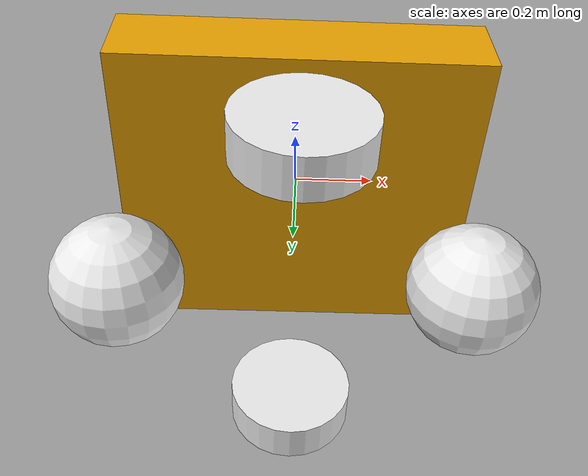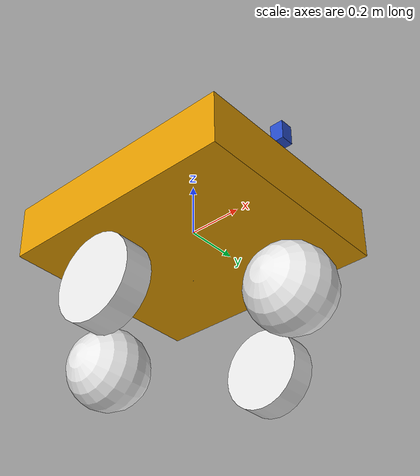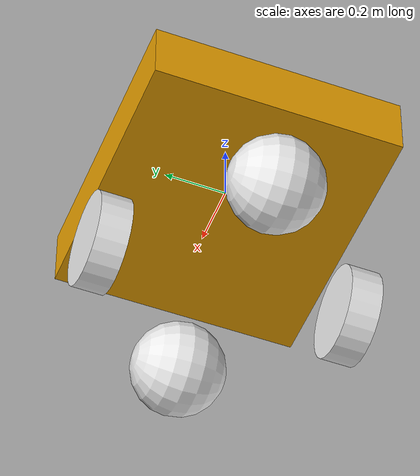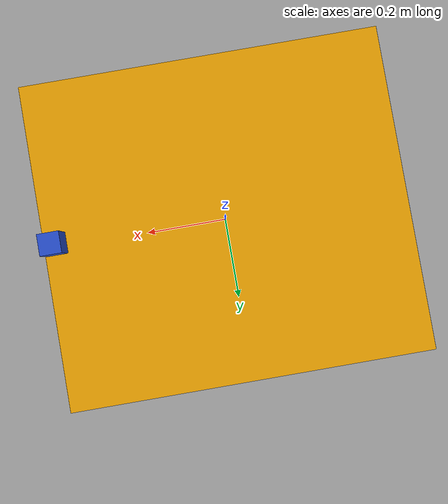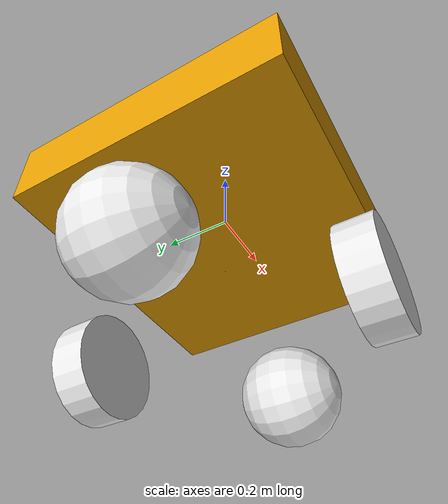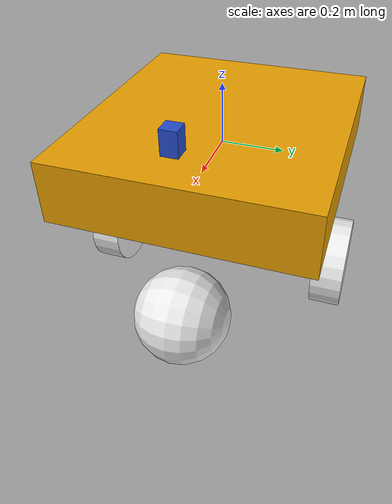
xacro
<?xml version="1.0"?>

<robot name="bender" xmlns:xacro="http://ros.org/wiki/xacro">
<!-- Include the parameters outlined in other files -->
    <xacro:include filename="$(find bender_model)/bender_sim_parameters/bender_model_properties.urdf.xacro"/>
    <xacro:include filename="$(find bender_model)/bender_sim_parameters/common_properties_and_values.urdf.xacro"/>

<!-- Bender Bot -->

    <!-- create the base_link -->
    <link name="base_link">
            <visual>
              <geometry>
                <box size="${base_len} ${base_wid} ${base_height}"/>
              </geometry>
              <xacro:property name="material_blue"/>
            </visual>
            <collision>
                <geometry>
                  <box size="${base_len} ${base_wid} ${base_height}"/>
                </geometry>
            </collision>
            <xacro:default_inertial mass="1"/>
    </link>

    <joint name="base_footprint_joint" type="fixed">
        <parent link="base_link"/>
        <child link="base_footprint"/>
        <axis xyz="0 0 0"/>
        <origin xyz="0 0 ${-base_height}" rpy="0 0 0"/>
    </joint>
    <link name="base_footprint">
        <visual>
            <geometry>
                <box size="0.001 0.001 0.001"/>
            </geometry>
        </visual>
        <collision>
            <geometry>
                <box size="0.001 0.001 0.001"/>
            </geometry>
        </collision>
        <xacro:default_inertial mass="0.001"/>
    </link>

    <xacro:macro name="caster" params="position reflect">
        <joint name="${position}_wheel_joint" type="fixed">
            <parent link="base_footprint"/>
            <child link="${position}_wheel"/>
            <axis xyz="0 0 1"/>
            <origin xyz="${reflect*(base_wid/2)} 0 ${-1 * base_height}" rpy="${pi/2} 0 0"/>
        </joint>
        <link name="${position}_wheel">
            <visual>
                <geometry>
                    <sphere radius="${caster_radius}"/>
                </geometry>
                <material name="white"/>
            </visual>
            <collision>
                <geometry>
                  <sphere radius="${caster_radius}"/>
                </geometry>
            </collision>
            <xacro:default_inertial mass="0.5"/>
        </link>

    <!-- This block provides the simulator (Gazebo) with information on a few additional
    physical properties. See http://gazebosim.org/tutorials/?tut=ros_urdf for more-->
        <gazebo reference="${position}_wheel">
            <mu1 value = "0.0"/>
            <mu2 value = "0.0"/>
            <kp  value = "10000000.0"/>
            <kd  value = "1.0"/>
            <material>Gazebo/Grey/</material>
        </gazebo>
    </xacro:macro>

    <xacro:macro name="wheel" params="position reflect">
        <joint name="${position}_wheel_joint" type="continuous">
            <parent link="base_footprint"/>
            <child link="${position}_wheel"/>
            <axis xyz="0 0 1"/>
            <origin xyz="0 ${reflect*(base_wid/2)} ${-1*base_height}" rpy="${-pi/2} 0 0"/>
        </joint>
        <link name="${position}_wheel">
            <visual>
                <geometry>
                    <cylinder length = "${wheel_length}" radius="${wheel_radius}"/>
                </geometry>
                <material name="white"/>
            </visual>
            <collision>
                <geometry>
                  <cylinder length = "${wheel_length}" radius="${wheel_radius}"/>
                </geometry>
            </collision>
            <xacro:default_inertial mass="0.5"/>
        </link>

    <!-- This block provides the simulator (Gazebo) with information on a few additional
    physical properties. See http://gazebosim.org/tutorials/?tut=ros_urdf for more-->
        <gazebo reference="${position}_wheel">
            <mu1 value = "200.0"/>
            <mu2 value = "100.0"/>
            <kp value="1000000.0" />
            <kd value="1.0" />
            <fdir1 value="1 0 0"/>
            <material>Gazebo/Grey/</material>
        </gazebo>

    <!-- This block connects the wheel joint to an actuator (motor), which informs both
    simulation and visualization of the robot -->
       <transmission name="${position}_wheel_trans">
        <type>transmission_interface/SimpleTransmission</type>
             <actuator name="${position}_wheel_motor">
                  <mechanicalReduction>1</mechanicalReduction>
             </actuator>
         <joint name="${position}_wheel_joint">
              <hardwareInterface>hardware_interface/VelocityJointInterface</hardwareInterface>
         </joint>
        </transmission>
    </xacro:macro>

    <!-- Creating the actual robot -->

    <xacro:caster position="front" reflect="1"/>
    <xacro:caster position="back"  reflect="-1"/>
    <xacro:wheel  position="right" reflect="1"/>
    <xacro:wheel  position="left"  reflect="-1"/>

    <!-- Gazebo plugin for ROS Control -->

    <gazebo>
      <plugin name="gazebo_ros_control" filename="libgazebo_ros_control.so">
        <robotNamespace>/</robotNamespace>
      </plugin>
    </gazebo>

    <!-- Hokuyo Laser Senso -->
    <link name="hokuyo_link">
      <visual>
        <origin xyz="0 0 0" rpy="0 0 0" />
        <geometry>
          <box size="${hokuyo_size} ${hokuyo_size} ${1.5*hokuyo_size}"/>
        </geometry>
        <material name="Blue" />
      </visual>
    </link>
    <joint name="hokuyo_joint" type="fixed">
      <origin xyz="${base_wid/2} 0 ${base_height+hokuyo_size/4}" rpy="0 0 0" />
      <parent link="base_link"/>
      <child link="hokuyo_link" />
    </joint>
    <gazebo reference="hokuyo_link">
      <material>Gazebo/Blue</material>
      <turnGravityOff>false</turnGravityOff>
      <sensor type="ray" name="head_hokuyo_sensor">
        <pose>${hokuyo_size/2} 0 0 0 0 0</pose>
        <visualize>false</visualize>
        <update_rate>40</update_rate>
        <ray>
          <scan>
            <horizontal>
              <samples>720</samples>
              <resolution>1</resolution>
              <min_angle>-1.570796</min_angle>
              <max_angle>1.570796</max_angle>
            </horizontal>
          </scan>
          <range>
            <min>0.10</min>
            <max>10.0</max>
            <resolution>0.001</resolution>
          </range>
        </ray>
        <plugin name="gazebo_ros_head_hokuyo_controller" filename="libgazebo_ros_laser.so">
          <topicName>/scan</topicName>
          <frameName>hokuyo_link</frameName>
        </plugin>
      </sensor>
    </gazebo>

</robot>

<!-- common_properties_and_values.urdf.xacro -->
<robot name="xacro_properties" xmlns:xacro="http://ros.org/wiki/xacro">
<!-- useful constants
////////////////////////////////////////////////////////////////////
-->
  <xacro:property name="M_PI" value="3.1415926535897931" />

<!-- Bender dimensions
////////////////////////////////////////////////////////////////////
-->
  <xacro:property name="base_len" value="0.89" />
  <xacro:property name="base_wid" value="0.80" />
  <xacro:property name="base_height" value="0.20" />
  <xacro:property name="caster_radius" value="0.15" />
  <xacro:property name="wheel_length" value="0.10" />
  <xacro:property name="wheel_radius" value="0.15" />
  <xacro:property name="update_rate" value="50"/>
  <xacro:property name="hokuyo_size" value="0.05"/>

<!-- Default Inertial Values for Bender
///////////////////////////////////////////////////////////////////
-->
<xacro:macro name="default_inertial" params="mass">
    <inertial>
      <mass value="${mass}" />
      <inertia ixx="1.0" ixy="0.0" ixz="0.0"
        iyy="1.0" iyz="0.0" izz="1.0" />
    </inertial>
</xacro:macro>

<!-- Begin Colors:
/////////////////////////////////////////////////////////////////////
-->
  <xacro:property name="material_white">
    <material name="white">
      <color rgba="1 1 1 1"/>
    </material>
  </xacro:property>
  <xacro:property name="material_grey">
    <material name="grey">
      <color rgba="0.5 0.5 0.5 1"/>
    </material>
  </xacro:property>
  <xacro:property name="material_light_grey">
    <material name="light_grey">
      <color rgba="0.6 0.6 0.6 1"/>
    </material>
  </xacro:property>
  <xacro:property name="material_dark_grey">
    <material name="dark_grey">
      <color rgba="0.3 0.3 0.3 1"/>
    </material>
  </xacro:property>
  <xacro:property name="material_black">
    <material name="black">
      <color rgba="0.1 0.1 0.1 1"/>
    </material>
  </xacro:property>
  <xacro:property name="material_red">
    <material name="red">
      <color rgba="1 0 0 1"/>
    </material>
  </xacro:property>
  <xacro:property name="material_green">
    <material name="green">
      <color rgba="0.0 0.8 0.0 1"/>
    </material>
  </xacro:property>
  <xacro:property name="material_blue">
    <material name="blue">
      <color rgba="0.0 0.0 1.0 1"/>
    </material>
  </xacro:property>
  <xacro:property name="material_grey_blue">
    <material name="grey_blue">
      <color rgba="0.4 0.4 1.0 1"/>
    </material>
  </xacro:property>
  <xacro:property name="material_orange">
    <material name="orange">
      <color rgba="1.0 0.7 0.0 1"/>
    </material>
  </xacro:property>
</robot>
